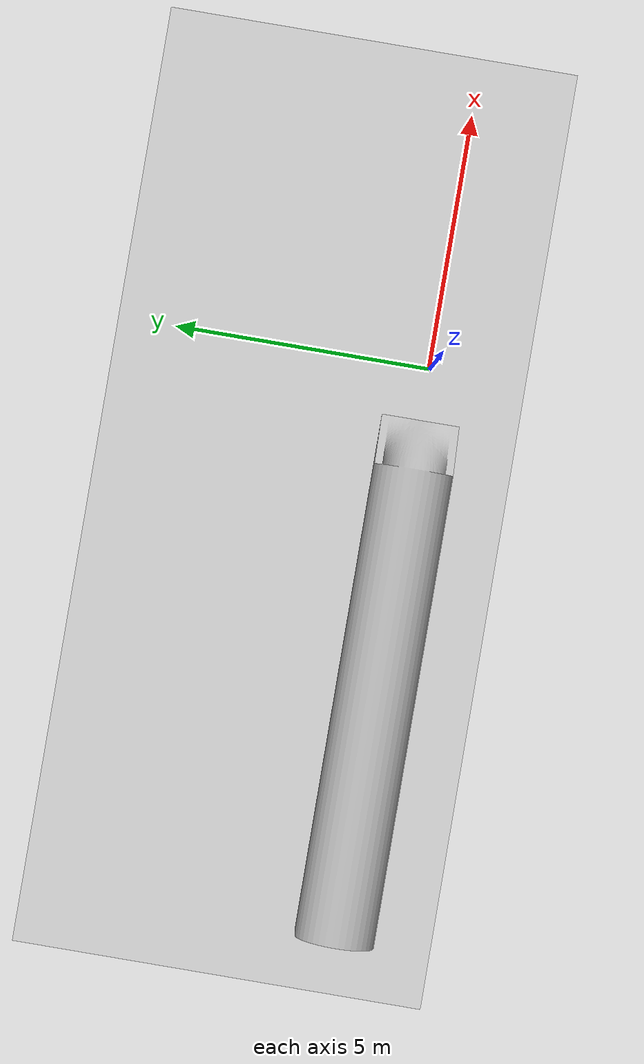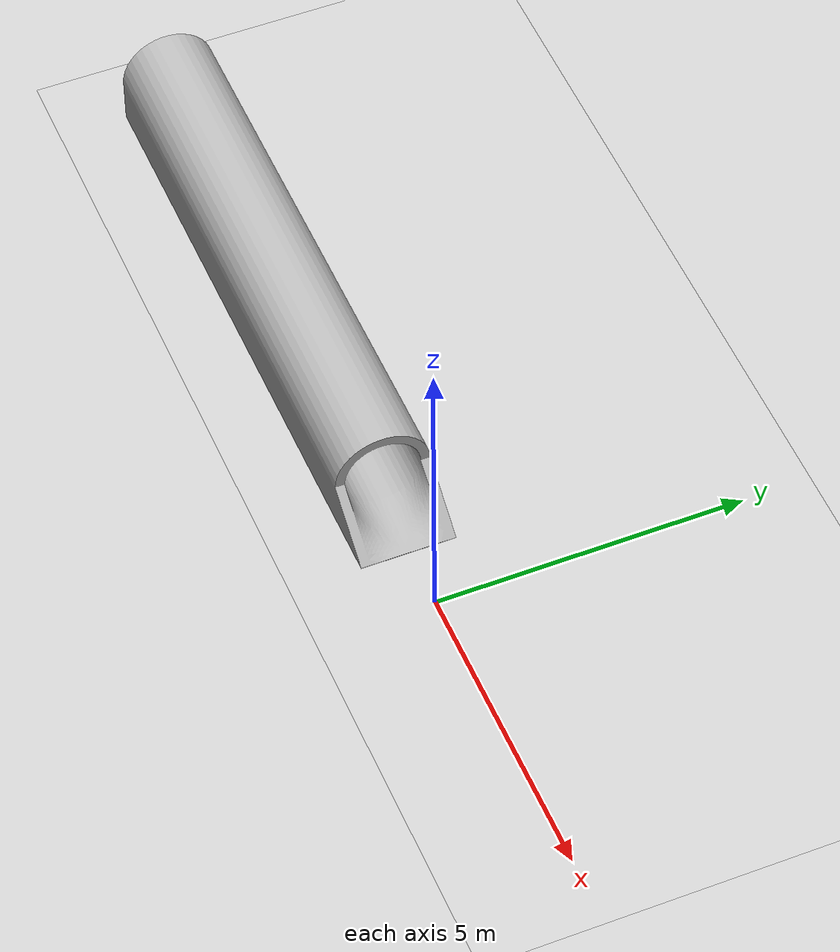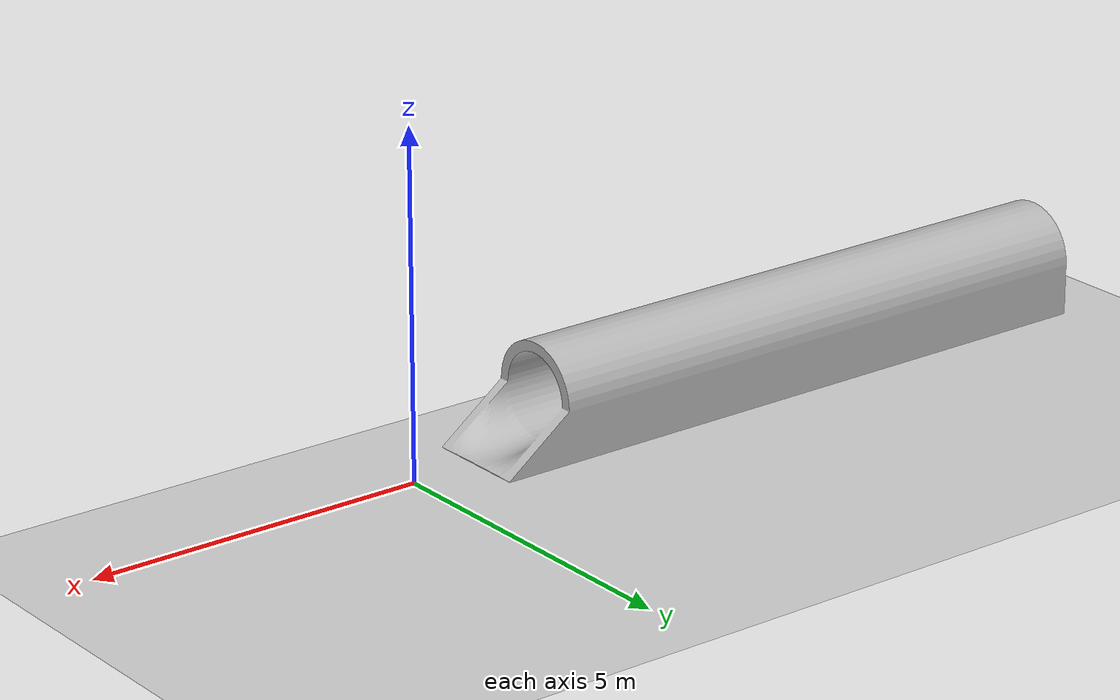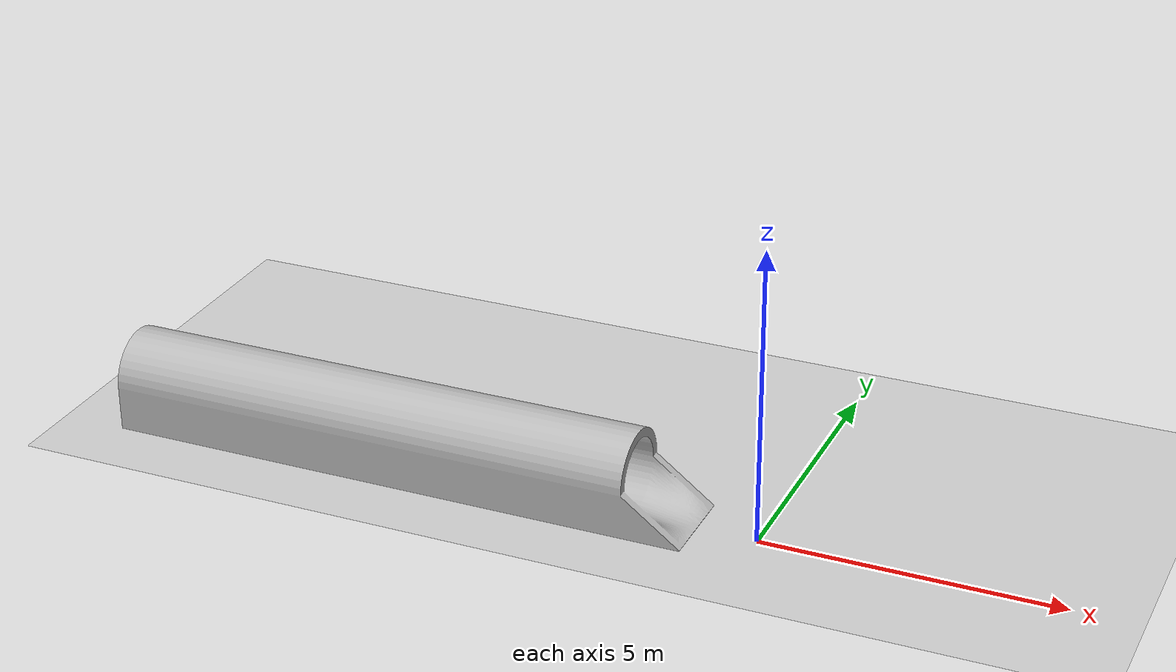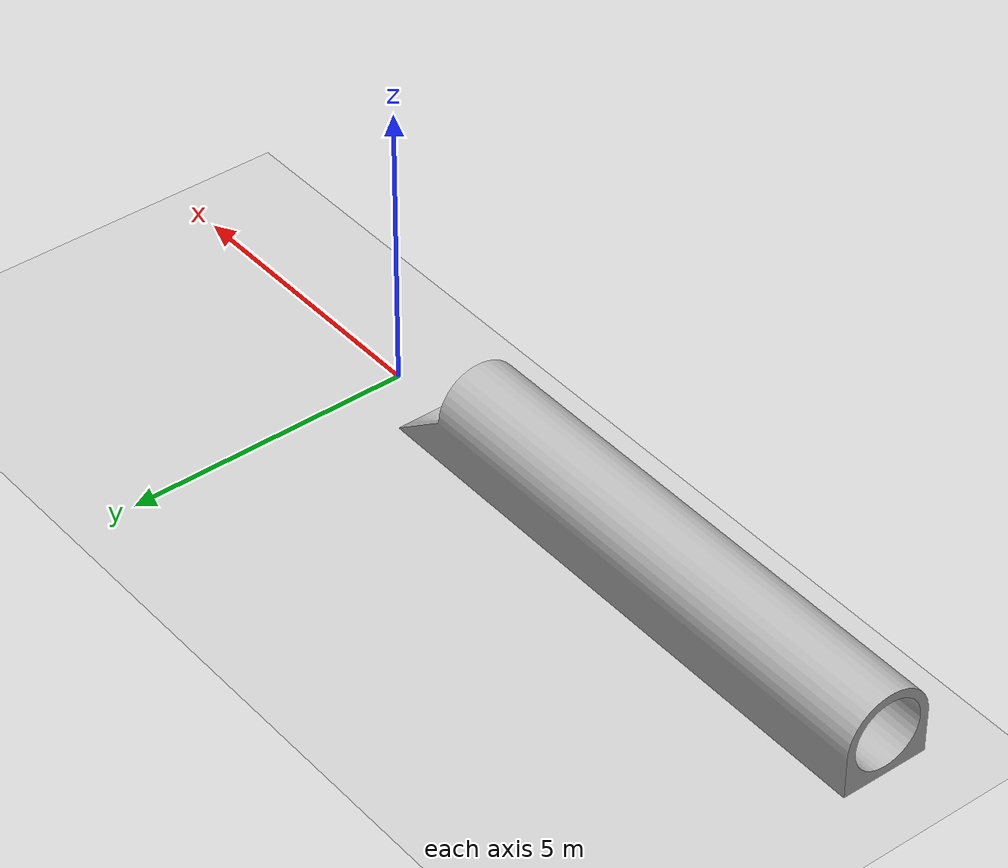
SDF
<?xml version="1.0"?>
<sdf version="1.4">
  <world name="default">
    <include>
      <uri>model://ground_plane</uri>
    </include>
    <include>
      <uri>model://sun</uri>
    </include>
    <include>
      <uri>model://tunnel</uri>
      <pose>-1 0 0  0 0 0</pose>
    </include>
  </world>
</sdf>

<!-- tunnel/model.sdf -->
<sdf version="1.5">
  <model name="tunnel">
    <static>true</static>
    <link name="chassis">
      <pose>-10.15 -0.762 0 0 0 0</pose>
      <collision name="collision">
        <geometry>
          <mesh>
            <uri>model://tunnel/meshes/tunnel.stl</uri>
          </mesh>
        </geometry>
      </collision>
      <visual name="visual">
        <geometry>
          <mesh>
            <uri>model://tunnel/meshes/tunnel.stl</uri>
          </mesh>
        </geometry>
        <material>
          <script>
            <uri>model://tunnel/materials/scripts</uri>
            <uri>model://tunnel/materials/textures</uri>
            <name>Tunnel/Diffuse</name>
          </script>
        </material>
      </visual>
    </link>
  </model>
</sdf>
